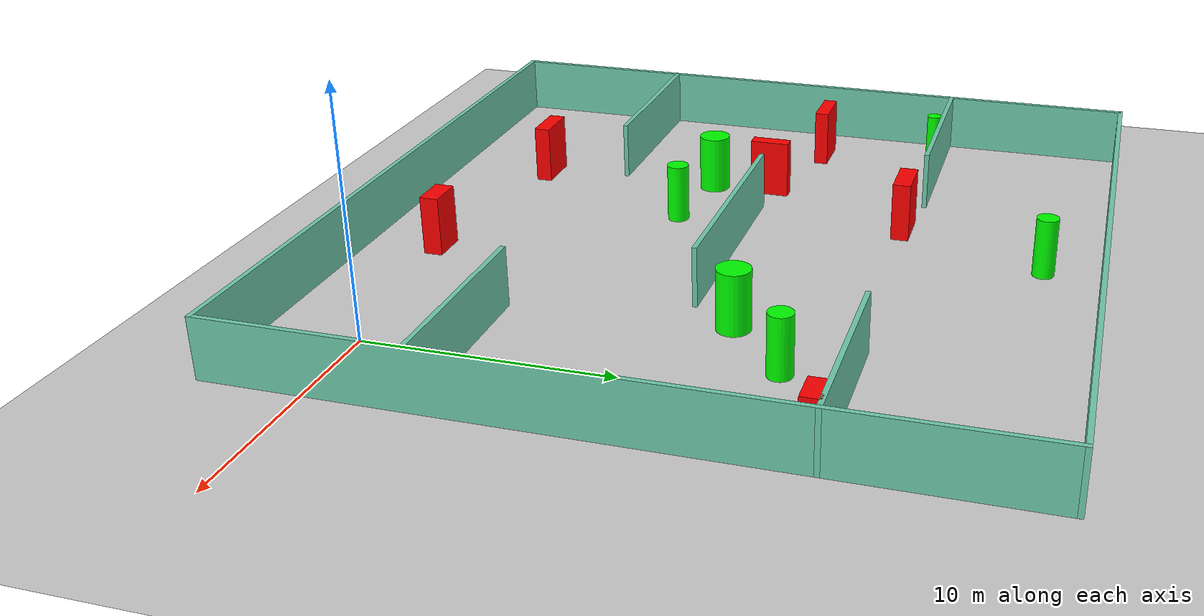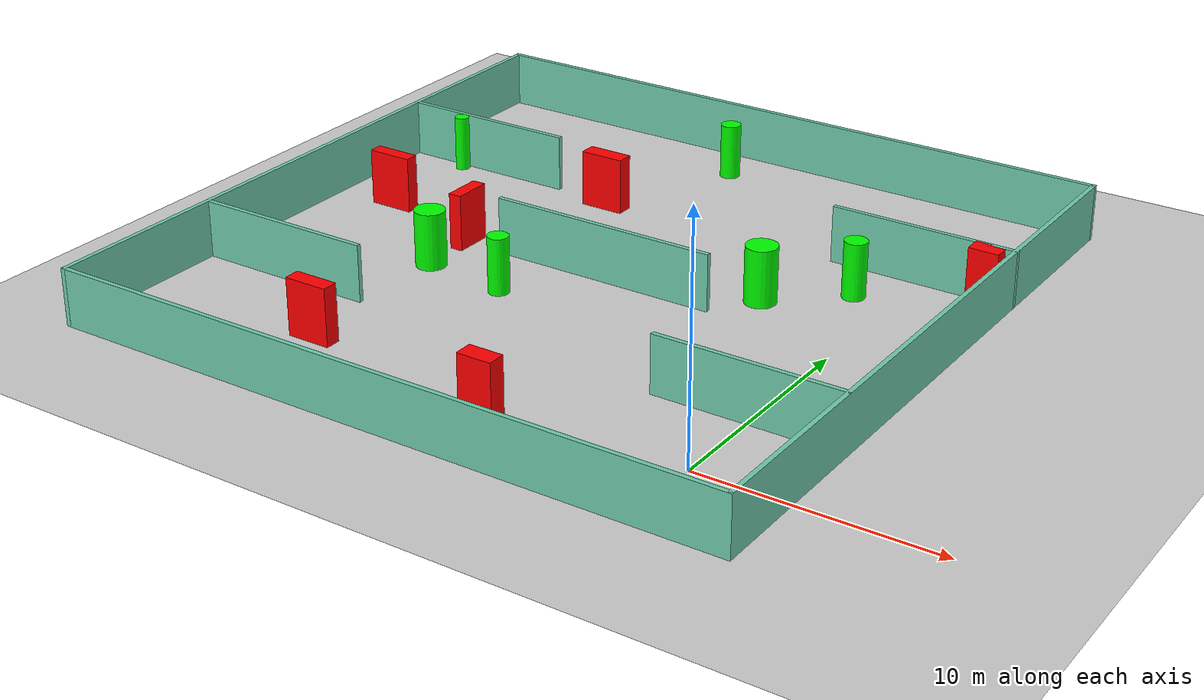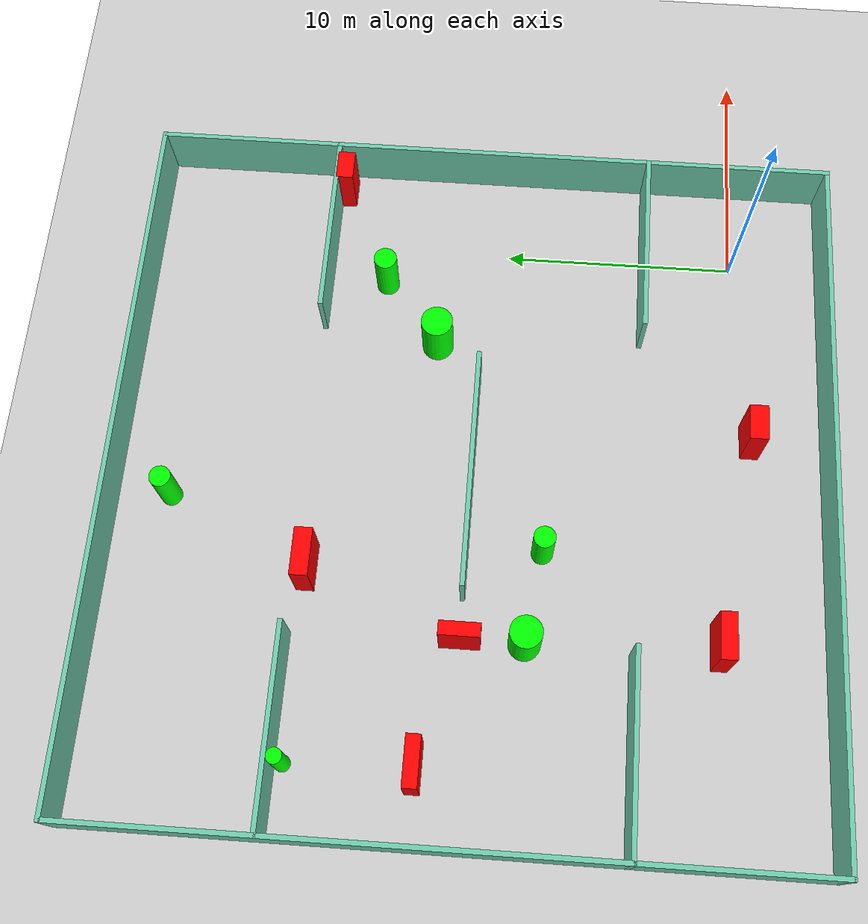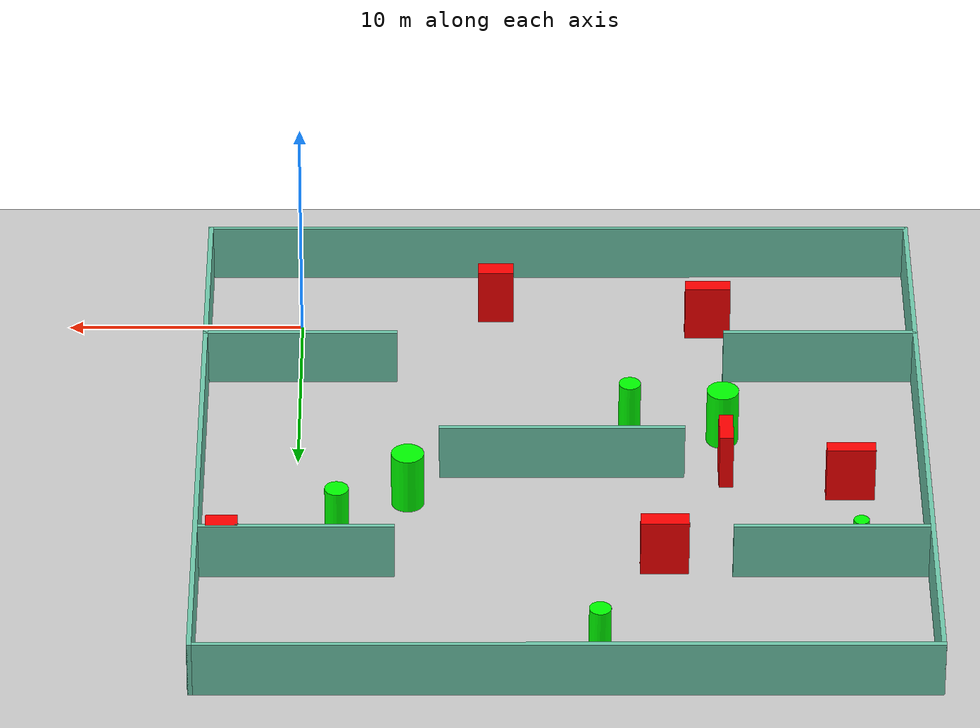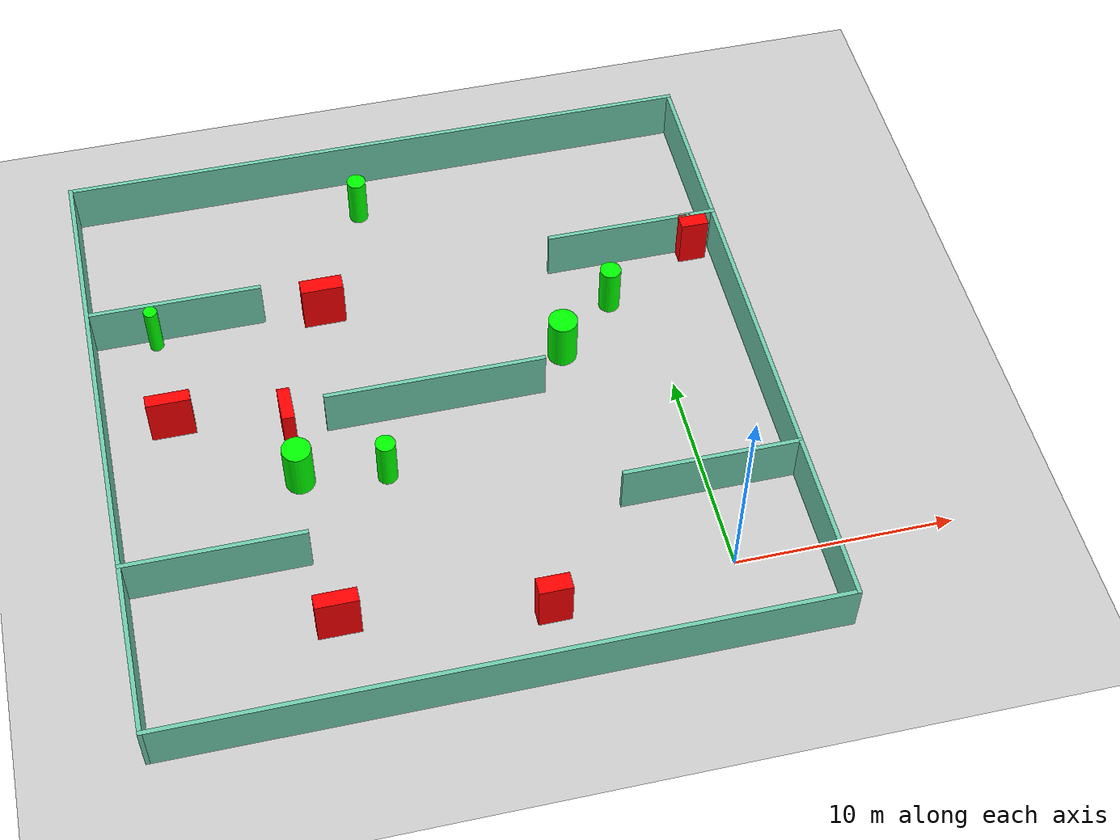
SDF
<sdf version="1.7">
 <world name="default">
  <light name="sun" type="directional">
   <pose>0 0 10 0 -0 0</pose>
   <diffuse>0.8 0.8 0.8 1</diffuse>
   <specular>0.2 0.2 0.2 1</specular>
   <attenuation>
    <range>1000</range>
    <constant>0.9</constant>
    <linear>0.01</linear>
    <quadratic>0.001</quadratic>
   </attenuation>
   <direction>-0.5 0.1 -0.9</direction>
   <spot><inner_angle>0</inner_angle><outer_angle>0</outer_angle><falloff>0</falloff></spot>
  </light>
  <model name="ground_plane">
   <static>1</static>
   <link name="link">
    <collision name="collision">
     <geometry><plane><normal>0 0 1</normal><size>100 100</size></plane></geometry>
     <surface>
      <contact><collide_bitmask>65535</collide_bitmask></contact>
      <friction><ode><mu>100</mu><mu2>50</mu2></ode></friction>
     </surface>
    </collision>
    <visual name="visual">
     <cast_shadows>0</cast_shadows>
     <geometry><plane><normal>0 0 1</normal><size>100 100</size></plane></geometry>
     <material>
      <script><uri>file://media/materials/scripts/gazebo.material</uri><name>Gazebo/Grey</name></script>
     </material>
    </visual>
   </link>
  </model>
  <gravity>0 0 -9.8</gravity>
  <magnetic_field>6e-06 2.3e-05 -4.2e-05</magnetic_field>
  <atmosphere type="adiabatic"/>
  <physics type="ode">
   <max_step_size>0.001</max_step_size>
   <real_time_factor>1</real_time_factor>
   <real_time_update_rate>1000</real_time_update_rate>
  </physics>
  <scene><ambient>0.4 0.4 0.4 1</ambient><background>0.7 0.7 0.7 1</background><shadows>1</shadows></scene>
  <spherical_coordinates>
   <surface_model>EARTH_WGS84</surface_model>
   <latitude_deg>0</latitude_deg>
   <longitude_deg>0</longitude_deg>
   <elevation>0</elevation>
   <heading_deg>0</heading_deg>
  </spherical_coordinates>
  <model name="my_base_walls">
   <link name="Wall_10">
    <collision name="Wall_10_Collision">
     <geometry><box><size>8.2 0.2 2.5</size></box></geometry>
     <pose>0 0 1.25 0 -0 0</pose>
    </collision>
    <visual name="Wall_10_Visual">
     <pose>0 0 1.25 0 -0 0</pose>
     <geometry><box><size>8.2 0.2 2.5</size></box></geometry>
     <material>
      <script><uri>file://media/materials/scripts/gazebo.material</uri><name>Gazebo/Grey</name></script>
      <ambient>0.435294 0.796078 0.67451 1</ambient>
     </material>
     <meta><layer>0</layer></meta>
    </visual>
    <pose>-11 -7 0 0 -0 0</pose>
   </link>
   <link name="Wall_12">
    <collision name="Wall_12_Collision">
     <geometry><box><size>8.2 0.2 2.5</size></box></geometry>
     <pose>0 0 1.25 0 -0 0</pose>
    </collision>
    <visual name="Wall_12_Visual">
     <pose>0 0 1.25 0 -0 0</pose>
     <geometry><box><size>8.2 0.2 2.5</size></box></geometry>
     <material>
      <script><uri>file://media/materials/scripts/gazebo.material</uri><name>Gazebo/Grey</name></script>
      <ambient>0.435294 0.796078 0.67451 1</ambient>
     </material>
     <meta><layer>0</layer></meta>
    </visual>
    <pose>-11 7 0 0 -0 0</pose>
   </link>
   <link name="Wall_14">
    <collision name="Wall_14_Collision">
     <geometry><box><size>8.2 0.2 2.5</size></box></geometry>
     <pose>0 0 1.25 0 -0 0</pose>
    </collision>
    <visual name="Wall_14_Visual">
     <pose>0 0 1.25 0 -0 0</pose>
     <geometry><box><size>8.2 0.2 2.5</size></box></geometry>
     <material>
      <script><uri>file://media/materials/scripts/gazebo.material</uri><name>Gazebo/Grey</name></script>
      <ambient>0.435294 0.796078 0.67451 1</ambient>
     </material>
     <meta><layer>0</layer></meta>
    </visual>
    <pose>11 7 0 0 -0 3.14159</pose>
   </link>
   <link name="Wall_16">
    <collision name="Wall_16_Collision">
     <geometry><box><size>10.2 0.2 2.5</size></box></geometry>
     <pose>0 0 1.25 0 -0 0</pose>
    </collision>
    <visual name="Wall_16_Visual">
     <pose>0 0 1.25 0 -0 0</pose>
     <geometry><box><size>10.2 0.2 2.5</size></box></geometry>
     <material>
      <script><uri>file://media/materials/scripts/gazebo.material</uri><name>Gazebo/Grey</name></script>
      <ambient>0.435294 0.796078 0.67451 1</ambient>
     </material>
     <meta><layer>0</layer></meta>
    </visual>
    <pose>0 0 0 0 -0 3.14159</pose>
   </link>
   <link name="Wall_2">
    <collision name="Wall_2_Collision">
     <geometry><box><size>30.2 0.2 2.5</size></box></geometry>
     <pose>0 0 1.25 0 -0 0</pose>
    </collision>
    <visual name="Wall_2_Visual">
     <pose>0 0 1.25 0 -0 0</pose>
     <geometry><box><size>30.2 0.2 2.5</size></box></geometry>
     <material>
      <script><uri>file://media/materials/scripts/gazebo.material</uri><name>Gazebo/Grey</name></script>
      <ambient>0.435294 0.796078 0.67451 1</ambient>
     </material>
     <meta><layer>0</layer></meta>
    </visual>
    <pose>0 -15 0 0 -0 3.14159</pose>
   </link>
   <link name="Wall_3">
    <collision name="Wall_3_Collision">
     <geometry><box><size>30.2 0.2 2.5</size></box></geometry>
     <pose>0 0 1.25 0 -0 0</pose>
    </collision>
    <visual name="Wall_3_Visual">
     <pose>0 0 1.25 0 -0 0</pose>
     <geometry><box><size>30.2 0.2 2.5</size></box></geometry>
     <material>
      <script><uri>file://media/materials/scripts/gazebo.material</uri><name>Gazebo/Grey</name></script>
      <ambient>0.435294 0.796078 0.67451 1</ambient>
     </material>
     <meta><layer>0</layer></meta>
    </visual>
    <pose>-15 0 0 0 -0 1.5708</pose>
   </link>
   <link name="Wall_4">
    <collision name="Wall_4_Collision">
     <geometry><box><size>30.2 0.2 2.5</size></box></geometry>
     <pose>0 0 1.25 0 -0 0</pose>
    </collision>
    <visual name="Wall_4_Visual">
     <pose>0 0 1.25 0 -0 0</pose>
     <geometry><box><size>30.2 0.2 2.5</size></box></geometry>
     <material>
      <script><uri>file://media/materials/scripts/gazebo.material</uri><name>Gazebo/Grey</name></script>
      <ambient>0.435294 0.796078 0.67451 1</ambient>
     </material>
     <meta><layer>0</layer></meta>
    </visual>
    <pose>0 15 0 0 -0 0</pose>
   </link>
   <link name="Wall_6">
    <collision name="Wall_6_Collision">
     <geometry><box><size>30.2 0.2 2.5</size></box></geometry>
     <pose>0 0 1.25 0 -0 0</pose>
    </collision>
    <visual name="Wall_6_Visual">
     <pose>0 0 1.25 0 -0 0</pose>
     <geometry><box><size>30.2 0.2 2.5</size></box></geometry>
     <material>
      <script><uri>file://media/materials/scripts/gazebo.material</uri><name>Gazebo/Grey</name></script>
      <ambient>0.435294 0.796078 0.67451 1</ambient>
     </material>
     <meta><layer>0</layer></meta>
    </visual>
    <pose>15 0 0 0 -0 1.5708</pose>
   </link>
   <link name="Wall_8">
    <collision name="Wall_8_Collision">
     <geometry><box><size>8.2 0.2 2.5</size></box></geometry>
     <pose>0 0 1.25 0 -0 0</pose>
    </collision>
    <visual name="Wall_8_Visual">
     <pose>0 0 1.25 0 -0 0</pose>
     <geometry><box><size>8.2 0.2 2.5</size></box></geometry>
     <material>
      <script><uri>file://media/materials/scripts/gazebo.material</uri><name>Gazebo/Grey</name></script>
      <ambient>0.435294 0.796078 0.67451 1</ambient>
     </material>
     <meta><layer>0</layer></meta>
    </visual>
    <pose>11 -7 0 0 -0 3.14159</pose>
   </link>
   <static>1</static>
   <pose>-11 11 0 0 -0 0</pose>
  </model>
  <model name="cylinder1">
   <static>1</static>
   <link name="link">
    <inertial>
     <mass>1</mass>
     <inertia><ixx>0.5</ixx><ixy>0</ixy><ixz>0</ixz><iyy>0.5</iyy><iyz>0</iyz><izz>1</izz></inertia>
    </inertial>
    <collision name="collision">
     <geometry><cylinder><radius>0.45700026416702394</radius><length>2.5</length></cylinder></geometry>
    </collision>
    <visual name="visual">
     <geometry><cylinder><radius>0.45700026416702394</radius><length>2.5</length></cylinder></geometry>
     <material>
      <ambient>0 1 0 1</ambient>
      <diffuse>0 1 0 1</diffuse>
      <specular>0.1 0.1 0.1 1</specular>
      <emissive>0 0 0 0</emissive>
     </material>
    </visual>
   </link>
   <pose>-13.872755165890098 7.827423173093996 1.25 0 0 0</pose>
  </model>
  <model name="cylinder2">
   <static>1</static>
   <link name="link">
    <inertial>
     <mass>1</mass>
     <inertia><ixx>0.5</ixx><ixy>0</ixy><ixz>0</ixz><iyy>0.5</iyy><iyz>0</iyz><izz>1</izz></inertia>
    </inertial>
    <collision name="collision">
     <geometry><cylinder><radius>0.4963765178643683</radius><length>2.5</length></cylinder></geometry>
    </collision>
    <visual name="visual">
     <geometry><cylinder><radius>0.4963765178643683</radius><length>2.5</length></cylinder></geometry>
     <material>
      <ambient>0 1 0 1</ambient>
      <diffuse>0 1 0 1</diffuse>
      <specular>0.1 0.1 0.1 1</specular>
      <emissive>0 0 0 0</emissive>
     </material>
    </visual>
   </link>
   <pose>-1.7117529102599605 15.396924642375744 1.25 0 0 0</pose>
  </model>
  <model name="cylinder3">
   <static>1</static>
   <link name="link">
    <inertial>
     <mass>1</mass>
     <inertia><ixx>0.5</ixx><ixy>0</ixy><ixz>0</ixz><iyy>0.5</iyy><iyz>0</iyz><izz>1</izz></inertia>
    </inertial>
    <collision name="collision">
     <geometry><cylinder><radius>0.4490647454826755</radius><length>2.5</length></cylinder></geometry>
    </collision>
    <visual name="visual">
     <geometry><cylinder><radius>0.4490647454826755</radius><length>2.5</length></cylinder></geometry>
     <material>
      <ambient>0 1 0 1</ambient>
      <diffuse>0 1 0 1</diffuse>
      <specular>0.1 0.1 0.1 1</specular>
      <emissive>0 0 0 0</emissive>
     </material>
    </visual>
   </link>
   <pose>-12.38710393503319 23.637511237851577 1.25 0 0 0</pose>
  </model>
  <model name="cylinder4">
   <static>1</static>
   <link name="link">
    <inertial>
     <mass>1</mass>
     <inertia><ixx>0.5</ixx><ixy>0</ixy><ixz>0</ixz><iyy>0.5</iyy><iyz>0</iyz><izz>1</izz></inertia>
    </inertial>
    <collision name="collision">
     <geometry><cylinder><radius>0.6826123015568921</radius><length>2.5</length></cylinder></geometry>
    </collision>
    <visual name="visual">
     <geometry><cylinder><radius>0.6826123015568921</radius><length>2.5</length></cylinder></geometry>
     <material>
      <ambient>0 1 0 1</ambient>
      <diffuse>0 1 0 1</diffuse>
      <specular>0.1 0.1 0.1 1</specular>
      <emissive>0 0 0 0</emissive>
     </material>
    </visual>
   </link>
   <pose>-4.607451506400377 12.907539333055304 1.25 0 0 0</pose>
  </model>
  <model name="cylinder5">
   <static>1</static>
   <link name="link">
    <inertial>
     <mass>1</mass>
     <inertia><ixx>0.5</ixx><ixy>0</ixy><ixz>0</ixz><iyy>0.5</iyy><iyz>0</iyz><izz>1</izz></inertia>
    </inertial>
    <collision name="collision">
     <geometry><cylinder><radius>0.6704021645897074</radius><length>2.5</length></cylinder></geometry>
    </collision>
    <visual name="visual">
     <geometry><cylinder><radius>0.6704021645897074</radius><length>2.5</length></cylinder></geometry>
     <material>
      <ambient>0 1 0 1</ambient>
      <diffuse>0 1 0 1</diffuse>
      <specular>0.1 0.1 0.1 1</specular>
      <emissive>0 0 0 0</emissive>
     </material>
    </visual>
   </link>
   <pose>-17.753430751954735 8.363942624710731 1.25 0 0 0</pose>
  </model>
  <model name="cylinder6">
   <static>1</static>
   <link name="link">
    <inertial>
     <mass>1</mass>
     <inertia><ixx>0.5</ixx><ixy>0</ixy><ixz>0</ixz><iyy>0.5</iyy><iyz>0</iyz><izz>1</izz></inertia>
    </inertial>
    <collision name="collision">
     <geometry><cylinder><radius>0.3227588275726309</radius><length>2.5</length></cylinder></geometry>
    </collision>
    <visual name="visual">
     <geometry><cylinder><radius>0.3227588275726309</radius><length>2.5</length></cylinder></geometry>
     <material>
      <ambient>0 1 0 1</ambient>
      <diffuse>0 1 0 1</diffuse>
      <specular>0.1 0.1 0.1 1</specular>
      <emissive>0 0 0 0</emissive>
     </material>
    </visual>
   </link>
   <pose>-23.110726125927293 17.589939680989794 1.25 0 0 0</pose>
  </model>
  <model name="box1">
   <static>1</static>
   <link name="link">
    <inertial>
     <mass>1</mass>
     <inertia><ixx>0.083</ixx><ixy>0</ixy><ixz>0</ixz><iyy>0.083</iyy><iyz>0</iyz><izz>0.083</izz></inertia>
    </inertial>
    <collision name="collision">
     <geometry><box><size>2.0272665703088326 0.603549697923693 2.5</size></box></geometry>
    </collision>
    <visual name="visual">
     <geometry><box><size>2.0272665703088326 0.603549697923693 2.5</size></box></geometry>
     <material>
      <ambient>1 0 0 1</ambient>
      <diffuse>1 0 0 1</diffuse>
      <specular>0.1 0.1 0.1 1</specular>
      <emissive>0 0 0 0</emissive>
     </material>
    </visual>
    <sensor name="my_contact" type="contact">
     <contact><collision>box_collision</collision><topic>__default_topic__</topic></contact>
    </sensor>
   </link>
   <pose>-22.935358303579726 12.415507385321222 1.25 0 0 0</pose>
  </model>
  <model name="box2">
   <static>1</static>
   <link name="link">
    <inertial>
     <mass>1</mass>
     <inertia><ixx>0.083</ixx><ixy>0</ixy><ixz>0</ixz><iyy>0.083</iyy><iyz>0</iyz><izz>0.083</izz></inertia>
    </inertial>
    <collision name="collision">
     <geometry><box><size>1.9222306281144752 0.6871782184344728 2.5</size></box></geometry>
    </collision>
    <visual name="visual">
     <geometry><box><size>1.9222306281144752 0.6871782184344728 2.5</size></box></geometry>
     <material>
      <ambient>1 0 0 1</ambient>
      <diffuse>1 0 0 1</diffuse>
      <specular>0.1 0.1 0.1 1</specular>
      <emissive>0 0 0 0</emissive>
     </material>
    </visual>
    <sensor name="my_contact" type="contact">
     <contact><collision>box_collision</collision><topic>__default_topic__</topic></contact>
    </sensor>
   </link>
   <pose>-17.34412912071947 0.4670538330803029 1.25 0 0 0</pose>
  </model>
  <model name="box3">
   <static>1</static>
   <link name="link">
    <inertial>
     <mass>1</mass>
     <inertia><ixx>0.083</ixx><ixy>0</ixy><ixz>0</ixz><iyy>0.083</iyy><iyz>0</iyz><izz>0.083</izz></inertia>
    </inertial>
    <collision name="collision">
     <geometry><box><size>0.5811618715618749 1.6973517019102025 2.5</size></box></geometry>
    </collision>
    <visual name="visual">
     <geometry><box><size>0.5811618715618749 1.6973517019102025 2.5</size></box></geometry>
     <material>
      <ambient>1 0 0 1</ambient>
      <diffuse>1 0 0 1</diffuse>
      <specular>0.1 0.1 0.1 1</specular>
      <emissive>0 0 0 0</emissive>
     </material>
    </visual>
    <sensor name="my_contact" type="contact">
     <contact><collision>box_collision</collision><topic>__default_topic__</topic></contact>
    </sensor>
   </link>
   <pose>-17.81266120994126 10.977806637618269 1.25 0 0 0</pose>
  </model>
  <model name="box4">
   <static>1</static>
   <link name="link">
    <inertial>
     <mass>1</mass>
     <inertia><ixx>0.083</ixx><ixy>0</ixy><ixz>0</ixz><iyy>0.083</iyy><iyz>0</iyz><izz>0.083</izz></inertia>
    </inertial>
    <collision name="collision">
     <geometry><box><size>1.5013665114358783 0.7919486850247752 2.5</size></box></geometry>
    </collision>
    <visual name="visual">
     <geometry><box><size>1.5013665114358783 0.7919486850247752 2.5</size></box></geometry>
     <material>
      <ambient>1 0 0 1</ambient>
      <diffuse>1 0 0 1</diffuse>
      <specular>0.1 0.1 0.1 1</specular>
      <emissive>0 0 0 0</emissive>
     </material>
    </visual>
    <sensor name="my_contact" type="contact">
     <contact><collision>box_collision</collision><topic>__default_topic__</topic></contact>
    </sensor>
   </link>
   <pose>-8.296435448953154 -0.8288555616045139 1.25 0 0 0</pose>
  </model>
  <model name="box5">
   <static>1</static>
   <link name="link">
    <inertial>
     <mass>1</mass>
     <inertia><ixx>0.083</ixx><ixy>0</ixy><ixz>0</ixz><iyy>0.083</iyy><iyz>0</iyz><izz>0.083</izz></inertia>
    </inertial>
    <collision name="collision">
     <geometry><box><size>1.984405177555493 0.7522787854228794 2.5</size></box></geometry>
    </collision>
    <visual name="visual">
     <geometry><box><size>1.984405177555493 0.7522787854228794 2.5</size></box></geometry>
     <material>
      <ambient>1 0 0 1</ambient>
      <diffuse>1 0 0 1</diffuse>
      <specular>0.1 0.1 0.1 1</specular>
      <emissive>0 0 0 0</emissive>
     </material>
    </visual>
    <sensor name="my_contact" type="contact">
     <contact><collision>box_collision</collision><topic>__default_topic__</topic></contact>
    </sensor>
   </link>
   <pose>-15.121765283910808 17.520637949554693 1.25 0 0 0</pose>
  </model>
  <model name="box6">
   <static>1</static>
   <link name="link">
    <inertial>
     <mass>1</mass>
     <inertia><ixx>0.083</ixx><ixy>0</ixy><ixz>0</ixz><iyy>0.083</iyy><iyz>0</iyz><izz>0.083</izz></inertia>
    </inertial>
    <collision name="collision">
     <geometry><box><size>1.309535234051061 0.7531690097217714 2.5</size></box></geometry>
    </collision>
    <visual name="visual">
     <geometry><box><size>1.309535234051061 0.7531690097217714 2.5</size></box></geometry>
     <material>
      <ambient>1 0 0 1</ambient>
      <diffuse>1 0 0 1</diffuse>
      <specular>0.1 0.1 0.1 1</specular>
      <emissive>0 0 0 0</emissive>
     </material>
    </visual>
    <sensor name="my_contact" type="contact">
     <contact><collision>box_collision</collision><topic>__default_topic__</topic></contact>
    </sensor>
   </link>
   <pose>2.9393295817932383 17.630007748486495 1.25 0 0 0</pose>
  </model>
 </world>
</sdf>
